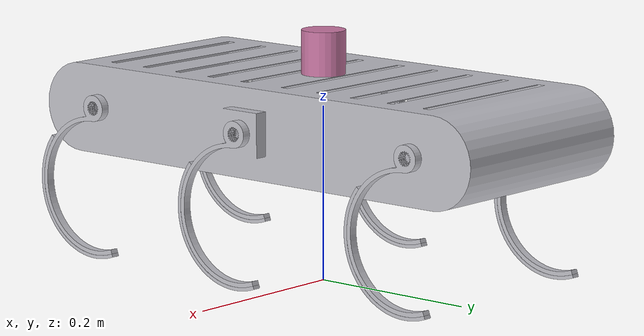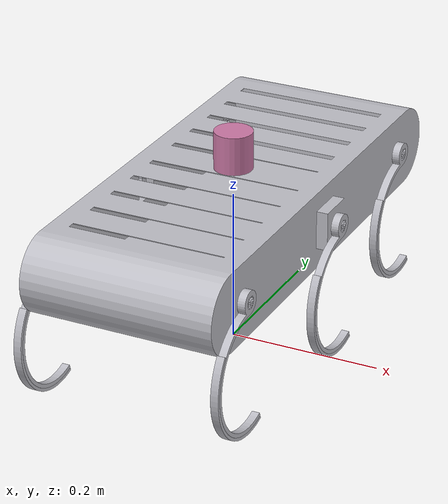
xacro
<?xml version="1.0" ?>
<robot name="hexapod" xmlns:xacro="http://www.ros.org/wiki/xacro">

  <xacro:property name="lidar_height" value="0.05" />
  <xacro:property name="lidar_radius" value="0.025" />
  <xacro:property name="lidar_range" value="6" />
  <xacro:property name="lidar_mass" value="0.1" />

  <xacro:include filename="$(find hexapod)/urdf/materials.xacro" />
  <xacro:include filename="$(find hexapod)/urdf/hexapod.trans" />
  <xacro:include filename="$(find hexapod)/urdf/hexapod.gazebo" />

  <xacro:macro name="cylinder_inertia" params="m r h">
    <inertia ixx="${m * (3 * r * r + h * h) / 12}" ixy="0" ixz="0"
      iyy="${m * (3 * r * r + h * h) / 12}" iyz="0"
      izz="${m * r * r / 2}"
    />
  </xacro:macro>

  <xacro:macro name="leg_grip_surface_props">
    <surface>
      <friction>
        <ode>
          <mu>100000</mu>
          <mu2>100000</mu2>
        </ode>
      </friction>
      <contact>
        <ode>
          <soft_cfm>100.0</soft_cfm>
          <soft_erp>10.0</soft_erp>
          <min_depth>0.003</min_depth>
        </ode>
      </contact>
    </surface>
  </xacro:macro>

  <xacro:macro name="leg_grip_joint_props">
    <axis>
      <xyz>1.0 0.0 0.0</xyz>
      <dynamics>
        <friction>100000</friction>
        <damping>0.5</damping>
      </dynamics>
    </axis>
    <physics>
      <ode>
        <implicit_spring_damper>1</implicit_spring_damper>
      </ode>
    </physics>
  </xacro:macro>

  <link name="dummy">
  </link>

  <link name="base_link">
    <inertial>
      <origin xyz="2.4070960763754144e-11 6.3476485072098135e-12 0.1709901766523239" rpy="0 0 0"/>
      <mass value="1.5574752213508936"/>
      <inertia ixx="0.042556" iyy="0.014288" izz="0.051181" ixy="0.0" iyz="0.0" ixz="-0.0"/>
    </inertial>
    <visual>
      <origin xyz="0 0 0" rpy="0 0 0"/>
      <geometry>
        <mesh filename="package://hexapod/meshes/base_link.stl" scale="0.001 0.001 0.001"/>
      </geometry>
      <material name="silver"/>
    </visual>
    <collision>
      <origin xyz="0 0 0" rpy="0 0 0"/>
      <geometry>
        <mesh filename="package://hexapod/meshes/base_link.stl" scale="0.001 0.001 0.001"/>
      </geometry>
    </collision>
  </link>

  <link name="leg_6dof_v2_1">
    <inertial>
      <origin xyz="0.0050000000000001155 -0.03235166076884674 -0.07070254923546676" rpy="0 0 0"/>
      <mass value="0.02386470398218519"/>
      <inertia ixx="0.000127" iyy="0.000102" izz="2.5e-05" ixy="-0.0" iyz="-1.4e-05" ixz="-0.0"/>
    </inertial>
    <visual>
      <origin xyz="-0.125 0.23 -0.1885" rpy="0 0 0"/>
      <geometry>
        <mesh filename="package://hexapod/meshes/leg_6dof_v2_1.stl" scale="0.001 0.001 0.001"/>
      </geometry>
      <material name="silver"/>
    </visual>
    <collision>
      <origin xyz="-0.125 0.23 -0.1885" rpy="0 0 0"/>
      <geometry>
        <mesh filename="package://hexapod/meshes/leg_6dof_v2_1.stl" scale="0.001 0.001 0.001"/>
      </geometry>
    </collision>
  </link>

  <link name="leg_6dof_v2_2">
    <inertial>
      <origin xyz="0.005000000000000088 -0.031141870756175725 -0.07124369582713279" rpy="0 0 0"/>
      <mass value="0.02386470398218519"/>
      <inertia ixx="0.000127" iyy="0.000102" izz="2.5e-05" ixy="-0.0" iyz="-1.2e-05" ixz="0.0"/>
    </inertial>
    <visual>
      <origin xyz="-0.14 0.0 -0.1885" rpy="0 0 0"/>
      <geometry>
        <mesh filename="package://hexapod/meshes/leg_6dof_v2_2.stl" scale="0.001 0.001 0.001"/>
      </geometry>
      <material name="silver"/>
    </visual>
    <collision>
      <origin xyz="-0.14 0.0 -0.1885" rpy="0 0 0"/>
      <geometry>
        <mesh filename="package://hexapod/meshes/leg_6dof_v2_2.stl" scale="0.001 0.001 0.001"/>
      </geometry>
    </collision>
  </link>

  <link name="leg_6dof_v2_3">
    <inertial>
      <origin xyz="0.005000000000000032 -0.03135301887406641 -0.07115102691021814" rpy="0 0 0"/>
      <mass value="0.02386470398218519"/>
      <inertia ixx="0.000127" iyy="0.000102" izz="2.5e-05" ixy="-0.0" iyz="-1.2e-05" ixz="-0.0"/>
    </inertial>
    <visual>
      <origin xyz="-0.125 -0.23 -0.1885" rpy="0 0 0"/>
      <geometry>
        <mesh filename="package://hexapod/meshes/leg_6dof_v2_3.stl" scale="0.001 0.001 0.001"/>
      </geometry>
      <material name="silver"/>
    </visual>
    <collision>
      <origin xyz="-0.125 -0.23 -0.1885" rpy="0 0 0"/>
      <geometry>
        <mesh filename="package://hexapod/meshes/leg_6dof_v2_3.stl" scale="0.001 0.001 0.001"/>
      </geometry>
    </collision>
  </link>

  <link name="leg_6dof_v2_6">
    <inertial>
      <origin xyz="-0.004999999999999921 -0.031608775260559885 -0.07103777691780166" rpy="0 0 0"/>
      <mass value="0.02386470398218519"/>
      <inertia ixx="0.000127" iyy="0.000102" izz="2.5e-05" ixy="0.0" iyz="-1.3e-05" ixz="-0.0"/>
    </inertial>
    <visual>
      <origin xyz="0.125 -0.23 -0.1885" rpy="0 0 0"/>
      <geometry>
        <mesh filename="package://hexapod/meshes/leg_6dof_v2_6.stl" scale="0.001 0.001 0.001"/>
      </geometry>
      <material name="silver"/>
    </visual>
    <collision>
      <origin xyz="0.125 -0.23 -0.1885" rpy="0 0 0"/>
      <geometry>
        <mesh filename="package://hexapod/meshes/leg_6dof_v2_6.stl" scale="0.001 0.001 0.001"/>
      </geometry>
    </collision>
  </link>

  <link name="leg_6dof_v2_5">
    <inertial>
      <origin xyz="-0.004999999999999893 -0.031525561415955805 -0.07107474516524885" rpy="0 0 0"/>
      <mass value="0.02386470398218519"/>
      <inertia ixx="0.000127" iyy="0.000102" izz="2.5e-05" ixy="-0.0" iyz="-1.3e-05" ixz="0.0"/>
    </inertial>
    <visual>
      <origin xyz="0.14 0.0 -0.1885" rpy="0 0 0"/>
      <geometry>
        <mesh filename="package://hexapod/meshes/leg_6dof_v2_5.stl" scale="0.001 0.001 0.001"/>
      </geometry>
      <material name="silver"/>
    </visual>
    <collision>
      <origin xyz="0.14 0.0 -0.1885" rpy="0 0 0"/>
      <geometry>
        <mesh filename="package://hexapod/meshes/leg_6dof_v2_5.stl" scale="0.001 0.001 0.001"/>
      </geometry>
    </collision>
  </link>

  <link name="leg_6dof_v2_4">
    <inertial>
      <origin xyz="-0.004999999999999977 -0.03142019182128922 -0.07112138896850714" rpy="0 0 0"/>
      <mass value="0.02386470398218519"/>
      <inertia ixx="0.000127" iyy="0.000102" izz="2.5e-05" ixy="0.0" iyz="-1.3e-05" ixz="-0.0"/>
    </inertial>
    <visual>
      <origin xyz="0.125 0.23 -0.1885" rpy="0 0 0"/>
      <geometry>
        <mesh filename="package://hexapod/meshes/leg_6dof_v2_4.stl" scale="0.001 0.001 0.001"/>
      </geometry>
      <material name="silver"/>
    </visual>
    <collision>
      <origin xyz="0.125 0.23 -0.1885" rpy="0 0 0"/>
      <geometry>
        <mesh filename="package://hexapod/meshes/leg_6dof_v2_4.stl" scale="0.001 0.001 0.001"/>
      </geometry>
    </collision>
  </link>

  <link name="rubber_grip__1">
    <inertial>
      <origin xyz="-2.7755575615628914e-17 -0.07624625178010364 0.04021337037165276" rpy="0 0 0"/>
      <mass value="0.00787636345148171"/>
      <inertia ixx="2.4e-05" iyy="1.5e-05" izz="9e-06" ixy="-0.0" iyz="9e-06" ixz="0.0"/>
    </inertial>
    <visual>
      <origin xyz="-0.13 0.20481 -0.022979" rpy="0 0 0"/>
      <geometry>
        <mesh filename="package://hexapod/meshes/rubber_grip__1.stl" scale="0.001 0.001 0.001"/>
      </geometry>
      <material name="silver"/>
    </visual>
    <collision>
      <origin xyz="-0.13 0.20481 -0.022979" rpy="0 0 0"/>
      <geometry>
        <mesh filename="package://hexapod/meshes/rubber_grip__1.stl" scale="0.001 0.001 0.001"/>
      </geometry>
      <xacro:leg_grip_surface_props />
    </collision>
  </link>

  <link name="rubber_grip__2">
    <inertial>
      <origin xyz="-2.220446049250313e-16 -0.07692002771739237 0.03890734556454367" rpy="0 0 0"/>
      <mass value="0.00787636345148171"/>
      <inertia ixx="2.4e-05" iyy="1.5e-05" izz="9e-06" ixy="0.0" iyz="9e-06" ixz="0.0"/>
    </inertial>
    <visual>
      <origin xyz="-0.145 -0.028007 -0.023433" rpy="0 0 0"/>
      <geometry>
        <mesh filename="package://hexapod/meshes/rubber_grip__2.stl" scale="0.001 0.001 0.001"/>
      </geometry>
      <material name="silver"/>
    </visual>
    <collision>
      <origin xyz="-0.145 -0.028007 -0.023433" rpy="0 0 0"/>
      <geometry>
        <mesh filename="package://hexapod/meshes/rubber_grip__2.stl" scale="0.001 0.001 0.001"/>
      </geometry>
      <xacro:leg_grip_surface_props />
    </collision>
  </link>

  <link name="rubber_grip__3">
    <inertial>
      <origin xyz="-2.498001805406602e-16 -0.0768049601213027 0.039134959310441905" rpy="0 0 0"/>
      <mass value="0.00787636345148171"/>
      <inertia ixx="2.4e-05" iyy="1.5e-05" izz="9e-06" ixy="-0.0" iyz="9e-06" ixz="0.0"/>
    </inertial>
    <visual>
      <origin xyz="-0.13 -0.257518 -0.023351" rpy="0 0 0"/>
      <geometry>
        <mesh filename="package://hexapod/meshes/rubber_grip__3.stl" scale="0.001 0.001 0.001"/>
      </geometry>
      <material name="silver"/>
    </visual>
    <collision>
      <origin xyz="-0.13 -0.257518 -0.023351" rpy="0 0 0"/>
      <geometry>
        <mesh filename="package://hexapod/meshes/rubber_grip__3.stl" scale="0.001 0.001 0.001"/>
      </geometry>
      <xacro:leg_grip_surface_props />
    </collision>
  </link>

  <link name="rubber_grip__4">
    <inertial>
      <origin xyz="-1.6653345369377348e-16 -0.076767931454116 0.03920755648359017" rpy="0 0 0"/>
      <mass value="0.00787636345148171"/>
      <inertia ixx="2.4e-05" iyy="1.5e-05" izz="9e-06" ixy="-0.0" iyz="9e-06" ixz="0.0"/>
    </inertial>
    <visual>
      <origin xyz="0.13 0.202638 -0.023325" rpy="0 0 0"/>
      <geometry>
        <mesh filename="package://hexapod/meshes/rubber_grip__4.stl" scale="0.001 0.001 0.001"/>
      </geometry>
      <material name="silver"/>
    </visual>
    <collision>
      <origin xyz="0.13 0.202638 -0.023325" rpy="0 0 0"/>
      <geometry>
        <mesh filename="package://hexapod/meshes/rubber_grip__4.stl" scale="0.001 0.001 0.001"/>
      </geometry>
      <xacro:leg_grip_surface_props />
    </collision>
  </link>

  <link name="rubber_grip__5">
    <inertial>
      <origin xyz="-3.885780586188048e-16 -0.07670956484773331 0.03932191594228095" rpy="0 0 0"/>
      <mass value="0.00787636345148171"/>
      <inertia ixx="2.4e-05" iyy="1.5e-05" izz="9e-06" ixy="-0.0" iyz="9e-06" ixz="0.0"/>
    </inertial>
    <visual>
      <origin xyz="0.145 -0.027117 -0.023284" rpy="0 0 0"/>
      <geometry>
        <mesh filename="package://hexapod/meshes/rubber_grip__5.stl" scale="0.001 0.001 0.001"/>
      </geometry>
      <material name="silver"/>
    </visual>
    <collision>
      <origin xyz="0.145 -0.027117 -0.023284" rpy="0 0 0"/>
      <geometry>
        <mesh filename="package://hexapod/meshes/rubber_grip__5.stl" scale="0.001 0.001 0.001"/>
      </geometry>
      <xacro:leg_grip_surface_props />
    </collision>
  </link>

  <link name="rubber_grip__6">
    <inertial>
      <origin xyz="-5.551115123125783e-17 -0.07666296509883322 0.03941108000544903" rpy="0 0 0"/>
      <mass value="0.00787636345148171"/>
      <inertia ixx="2.4e-05" iyy="1.5e-05" izz="9e-06" ixy="-0.0" iyz="9e-06" ixz="0.0"/>
    </inertial>
    <visual>
      <origin xyz="0.13 -0.256923 -0.023253" rpy="0 0 0"/>
      <geometry>
        <mesh filename="package://hexapod/meshes/rubber_grip__6.stl" scale="0.001 0.001 0.001"/>
      </geometry>
      <material name="silver"/>
    </visual>
    <collision>
      <origin xyz="0.13 -0.256923 -0.023253" rpy="0 0 0"/>
      <geometry>
        <mesh filename="package://hexapod/meshes/rubber_grip__6.stl" scale="0.001 0.001 0.001"/>
      </geometry>
      <xacro:leg_grip_surface_props />
    </collision>
  </link>

  <link name="link_lidar">
    <origin rpy="0 0 0" xyz="0 0 0"/>
    <inertial>
      <mass value="${lidar_mass}"/>
      <xacro:cylinder_inertia m="${lidar_mass}" r="${lidar_radius}" h="${lidar_height}"/>
    </inertial>
    <collision>
      <origin rpy="0 0 0" xyz="0 0 0"/>
      <geometry>
        <cylinder length="${lidar_height}" radius="${lidar_radius}"/>
      </geometry>
    </collision>
    <visual>
      <origin rpy="0 0 0" xyz="0 0 0"/>
      <geometry>
        <cylinder length="${lidar_height}" radius="${lidar_radius}"/>
      </geometry>
    </visual>
  </link>

  <joint name="joint_lidar" type="fixed">
    <origin rpy="0 0 1.5708" xyz="0 0 0.262" />

    <parent link="base_link"/>
    <child link="link_lidar"/>
    <limit effort="1000" velocity="1"/>
        <axis rpy="0 0 0" xyz="0 0 1"/>
    <joint_properties damping="1.0" friction="1.0"/>
  </joint>

  <joint name="dummy_joint" type="fixed">
    <parent link="dummy"/>
    <child link="base_link"/>
  </joint>

  <joint name="right_hind_leg_joint" type="continuous">
    <origin xyz="0.125 -0.23 0.1885" rpy="0 0 0"/>
    <parent link="base_link"/>
    <child link="leg_6dof_v2_1"/>
  </joint>

  <joint name="right_mid_leg_joint" type="continuous">
    <origin xyz="0.14 0.0 0.1885" rpy="0 0 0"/>
    <parent link="base_link"/>
    <child link="leg_6dof_v2_2"/>
  </joint>

  <joint name="right_front_leg_joint" type="continuous">
    <origin xyz="0.125 0.23 0.1885" rpy="0 0 0"/>
    <parent link="base_link"/>
    <child link="leg_6dof_v2_3"/>
  </joint>

  <joint name="left_front_leg_joint" type="continuous">
    <origin xyz="-0.125 0.23 0.1885" rpy="0 0 0"/>
    <parent link="base_link"/>
    <child link="leg_6dof_v2_6"/>
  </joint>

  <joint name="left_mid_leg_joint" type="continuous">
    <origin xyz="-0.14 0.0 0.1885" rpy="0 0 0"/>
    <parent link="base_link"/>
    <child link="leg_6dof_v2_5"/>
  </joint>

  <joint name="left_hind_leg_joint" type="continuous">
    <origin xyz="-0.125 -0.23 0.1885" rpy="0 0 0"/>
    <parent link="base_link"/>
    <child link="leg_6dof_v2_4"/>
  </joint>

  <joint name="right_hind_grip_joint" type="fixed">
    <origin xyz="0.005 0.02519 -0.165521" rpy="0 0 0"/>
    <parent link="leg_6dof_v2_1"/>
    <child link="rubber_grip__1"/>
    <xacro:leg_grip_joint_props />
  </joint>

  <joint name="right_mid_grip_joint" type="fixed">
    <origin xyz="0.005 0.028007 -0.165067" rpy="0 0 0"/>
    <parent link="leg_6dof_v2_2"/>
    <child link="rubber_grip__2"/>
    <xacro:leg_grip_joint_props />
  </joint>

  <joint name="right_front_grip_joint" type="fixed">
    <origin xyz="0.005 0.027518 -0.165149" rpy="0 0 0"/>
    <parent link="leg_6dof_v2_3"/>
    <child link="rubber_grip__3"/>
    <xacro:leg_grip_joint_props />
  </joint>

  <joint name="left_hind_grip_joint" type="fixed">
    <origin xyz="-0.005 0.027362 -0.165175" rpy="0 0 0"/>
    <parent link="leg_6dof_v2_4"/>
    <child link="rubber_grip__4"/>
    <xacro:leg_grip_joint_props />
  </joint>

  <joint name="left_mid_grip_joint" type="fixed">
    <origin xyz="-0.005 0.027117 -0.165216" rpy="0 0 0"/>
    <parent link="leg_6dof_v2_5"/>
    <child link="rubber_grip__5"/>
    <xacro:leg_grip_joint_props />
  </joint>

  <joint name="left_front_grip_joint" type="fixed">
    <origin xyz="-0.005 0.026923 -0.165247" rpy="0 0 0"/>
    <parent link="leg_6dof_v2_6"/>
    <child link="rubber_grip__6"/>
    <xacro:leg_grip_joint_props />
  </joint>

</robot>

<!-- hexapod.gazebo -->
<robot name="hexapod" xmlns:xacro="http://www.ros.org/wiki/xacro" >

<xacro:property name="body_color" value="Gazebo/Silver" />
<xacro:property name="leg_mu1" value="0.2" />
<xacro:property name="leg_mu2" value="0.2" />
<xacro:property name="grip_mu1" value="100000" />
<xacro:property name="grip_mu2" value="100000" />

<gazebo>
  <plugin name="control_plugin" filename="libgazebo_ros_control.so">
    <robotNamespace>/hexapod</robotNamespace>
  </plugin>
</gazebo>
<gazebo>
  <plugin name="gps_controller" filename="libhector_gazebo_ros_gps.so">
      <alwayson>true</alwayson>
      <updaterate>50.0</updaterate>
      <bodyname>base_link</bodyname>
      <topicname>/fix</topicname>
      <velocitytopicname>/fix_velocity</velocitytopicname>
      <drift>0.0 0.0 0.0</drift>
      <gaussianNoise>0.0 0.0 0.0</gaussianNoise>
      <velocityDrift>0 0 0</velocityDrift>
      <velocityGaussianNoise>0.1 0.1 0.1</velocityGaussianNoise>
  </plugin>

  <plugin name="imu_plugin" filename="libgazebo_ros_imu.so">
    <alwaysOn>true</alwaysOn>
    <bodyName>base_link</bodyName>
    <topicName>/imu</topicName>
    <serviceName>imu_service</serviceName>
    <gaussianNoise>0.0</gaussianNoise>
    <updateRate>50.0</updateRate>
  </plugin>
</gazebo>

<gazebo reference="link_lidar">
  <sensor type="ray" name="head_rplidar_sensor">
    <pose>0 0 0 0 0 0</pose>
    <visualize>true</visualize>
    <update_rate>50.0</update_rate>
    <ray>
      <scan>
        <horizontal>
          <samples>721</samples>
          <resolution>1</resolution>
          <min_angle>-3.14159265</min_angle>
          <max_angle>3.14159265</max_angle>
        </horizontal>
      </scan>
      <range>
        <min>0.5</min>
        <max>${lidar_range}</max>
        <resolution>0.01</resolution>
      </range>
      <noise>
        <type>gaussian</type>
        <mean>0.0</mean>
        <stddev>0.01</stddev>
      </noise>
    </ray>
    <plugin name="gazebo_ros_head_rplidar_controller" filename="libgazebo_ros_laser.so">
      <topicName>/hexapod/laser/scan</topicName>
      <frameName>laser</frameName>
    </plugin>
  </sensor>
</gazebo>

<gazebo reference="base_link">
  <material>${body_color}</material>
  <mu1>0.2</mu1>
  <mu2>0.2</mu2>
  <selfCollide>true</selfCollide>
  <gravity>true</gravity>
</gazebo>

<gazebo reference="leg_6dof_v2_1">
  <material>${body_color}</material>
  <mu1>${leg_mu1}</mu1>
  <mu2>${leg_mu2}</mu2>
  <selfCollide>true</selfCollide>
</gazebo>

<gazebo reference="leg_6dof_v2_2">
  <material>${body_color}</material>
  <mu1>${leg_mu1}</mu1>
  <mu2>${leg_mu2}</mu2>
  <selfCollide>true</selfCollide>
</gazebo>

<gazebo reference="leg_6dof_v2_3">
  <material>${body_color}</material>
  <mu1>${leg_mu1}</mu1>
  <mu2>${leg_mu2}</mu2>
  <selfCollide>true</selfCollide>
</gazebo>

<gazebo reference="leg_6dof_v2_4">
  <material>${body_color}</material>
  <mu1>${leg_mu1}</mu1>
  <mu2>${leg_mu2}</mu2>
  <selfCollide>true</selfCollide>
</gazebo>

<gazebo reference="leg_6dof_v2_5">
  <material>${body_color}</material>
  <mu1>${leg_mu1}</mu1>
  <mu2>${leg_mu2}</mu2>
  <selfCollide>true</selfCollide>
</gazebo>

<gazebo reference="leg_6dof_v2_6">
  <material>${body_color}</material>
  <mu1>${leg_mu1}</mu1>
  <mu2>${leg_mu2}</mu2>
  <selfCollide>true</selfCollide>
</gazebo>

<gazebo reference="rubber_grip__1">
  <material>${body_color}</material>
  <mu1>${grip_mu1}</mu1>
  <mu2>${grip_mu2}</mu2>
  <selfCollide>true</selfCollide>
</gazebo>

<gazebo reference="rubber_grip__2">
  <material>${body_color}</material>
  <mu1>${grip_mu1}</mu1>
  <mu2>${grip_mu2}</mu2>
  <selfCollide>true</selfCollide>
</gazebo>

<gazebo reference="rubber_grip__3">
  <material>${body_color}</material>
  <mu1>${grip_mu1}</mu1>
  <mu2>${grip_mu2}</mu2>
  <selfCollide>true</selfCollide>
</gazebo>

<gazebo reference="rubber_grip__4">
  <material>${body_color}</material>
  <mu1>${grip_mu1}</mu1>
  <mu2>${grip_mu2}</mu2>
  <selfCollide>true</selfCollide>
</gazebo>

<gazebo reference="rubber_grip__5">
  <material>${body_color}</material>
  <mu1>${grip_mu1}</mu1>
  <mu2>${grip_mu2}</mu2>
  <selfCollide>true</selfCollide>
</gazebo>

<gazebo reference="rubber_grip__6">
  <material>${body_color}</material>
  <mu1>${grip_mu1}</mu1>
  <mu2>${grip_mu2}</mu2>
  <selfCollide>true</selfCollide>
</gazebo>

</robot>
